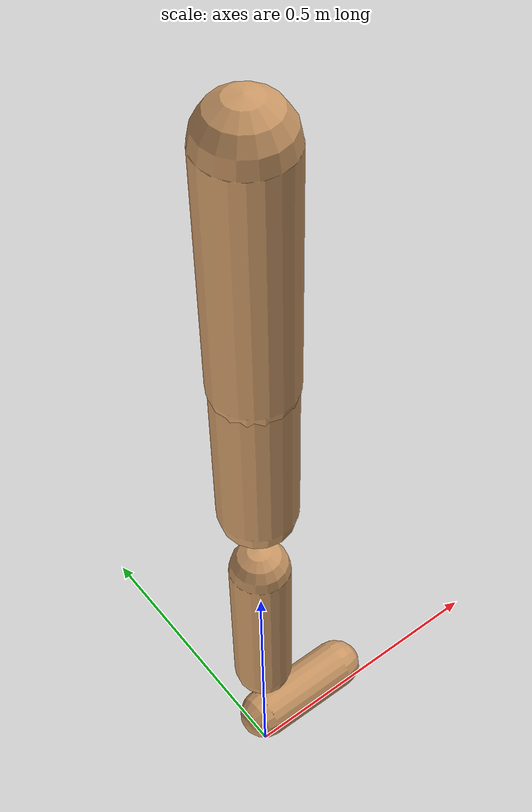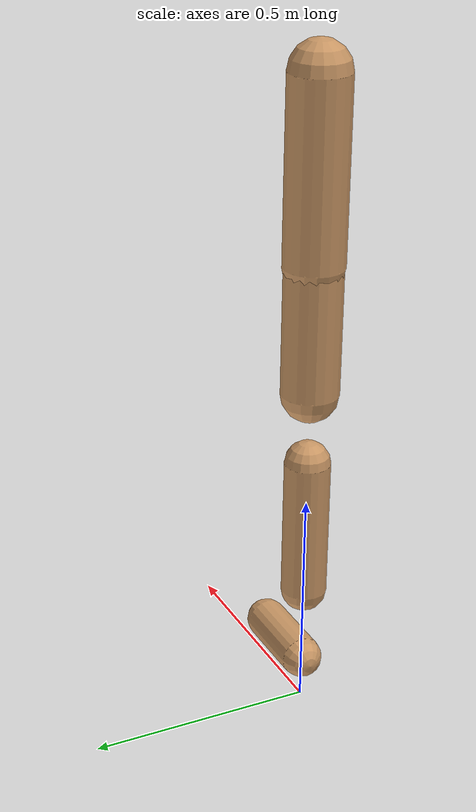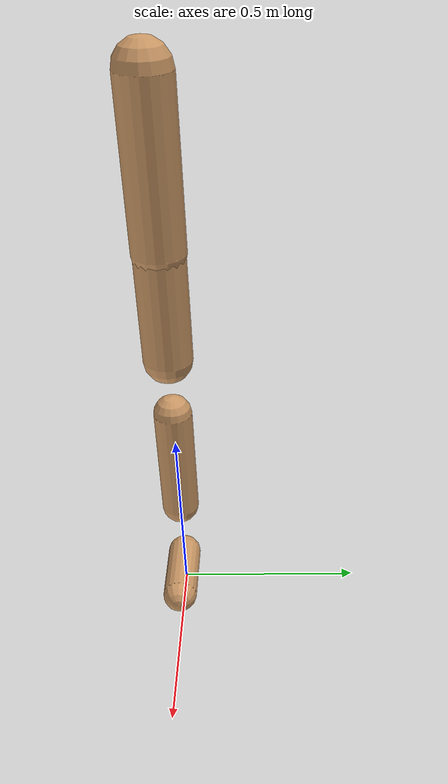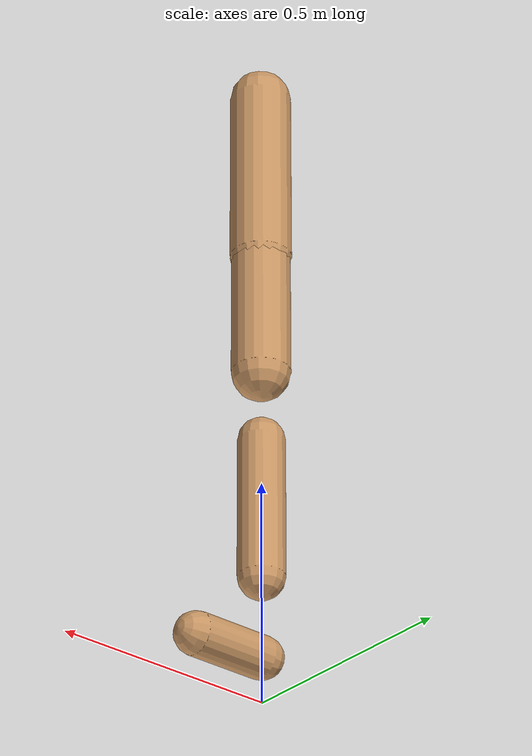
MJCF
<mujoco model="walker2d">
  <compiler angle="degree" coordinate="global" inertiafromgeom="true" />
  <default>
    <joint armature="0.01" damping=".1" limited="true" />
    <geom conaffinity="0" condim="3" contype="1" density="1000" friction="0.8 .1 .1" rgba="0.8 0.6 .4 1" />
  </default>
  <option integrator="RK4" timestep="0.002" />
  <worldbody>

    <body name="torso" pos="0 0 -0.34972434873729913">
      <joint armature="0" axis="1 0 0" damping="0" limited="false" name="ignorex" pos="0 0 0" stiffness="0" type="slide" />
      <joint armature="0" axis="0 0 1" damping="0" limited="false" name="ignorez" pos="0 0 0" ref="1.25" stiffness="0" type="slide" />
      <joint armature="0" axis="0 1 0" damping="0" limited="false" name="ignorey" pos="0 0 0" stiffness="0" type="hinge" />
      <geom fromto="0 0 1.45 0 0 1.05" name="torso_geom" size="0.0663557058656175" type="capsule" />
      <body name="thigh">
        <joint axis="0 -1 0" name="thigh_joint" pos="0 0 1.05" range="-150 0" type="hinge" />
        <geom fromto="0.0 0.0 1.05 0.0 0.0 0.7656589020334574" name="thigh_geom" size="0.06350354824997191" type="capsule" />
        <body name="leg" pos="0.0 0.0 0.16565890203345746">
          <joint axis="0 -1 0" name="leg_joint" pos="0 0 0.6" range="-150 0" type="hinge" />
          <geom fromto="0.0 0.0 0.6 0.0 0.0 0.28406544670384165" name="leg_geom" size="0.05080283859997753" type="capsule" />
          <body name="foot" pos="0.0 0.0 0.18406544670384165">
            <joint axis="0 -1 0" name="foot_joint" pos="0 0 0.1" range="-45 45" type="hinge" />
            <geom fromto="0.0 0.0 0.1 0.1722838270854064 0.0 0.1" name="foot_geom" size="0.04636350138225449" type="capsule" />
          </body>
        </body>
      </body>

      <body name="thigh_left">
        <joint axis="0 -1 0" name="thigh_left_joint" pos="0 0 1.05" range="-150 0" type="hinge" />
        <geom fromto="0.0 0.0 1.05 0.0 0.0 0.7656589020334574" name="thigh_left_geom" rgba=".7 .3 .6 1" size="0.06350354824997191" type="capsule" />
        <body name="leg_left" pos="0.0 0.0 0.16565890203345746">
          <joint axis="0 -1 0" name="leg_left_joint" pos="0 0 0.6" range="-150 0" type="hinge" />
          <geom fromto="0.0 0.0 0.6 0.0 0.0 0.28406544670384165" name="leg_left_geom" rgba=".7 .3 .6 1" size="0.05080283859997753" type="capsule" />
          <body name="foot_left" pos="0.0 0.0 0.18406544670384165">
            <joint axis="0 -1 0" name="foot_left_joint" pos="0 0 0.1" range="-45 45" type="hinge" />
            <geom fromto="0.0 0.0 0.1 0.1722838270854064 0.0 0.1" name="foot_left_geom" rgba=".7 .3 .6 1" size="0.04636350138225449" type="capsule" />
          </body>
        </body>
      </body>
    </body>
  </worldbody>
  <actuator>

    <motor ctrllimited="true" ctrlrange="-1.0 1.0" gear="100" joint="thigh_joint" />
    <motor ctrllimited="true" ctrlrange="-1.0 1.0" gear="100" joint="leg_joint" />
    <motor ctrllimited="true" ctrlrange="-1.0 1.0" gear="100" joint="foot_joint" />
    <motor ctrllimited="true" ctrlrange="-1.0 1.0" gear="100" joint="thigh_left_joint" />
    <motor ctrllimited="true" ctrlrange="-1.0 1.0" gear="100" joint="leg_left_joint" />
    <motor ctrllimited="true" ctrlrange="-1.0 1.0" gear="100" joint="foot_left_joint" />

  </actuator>
</mujoco>
